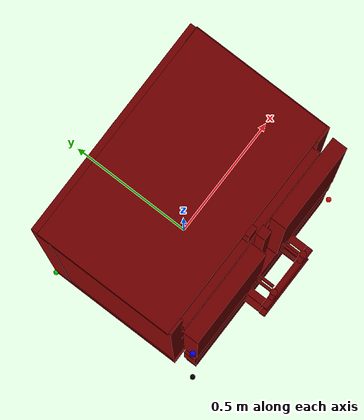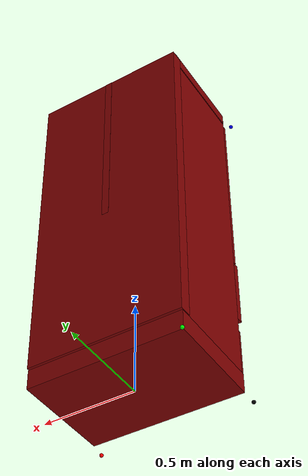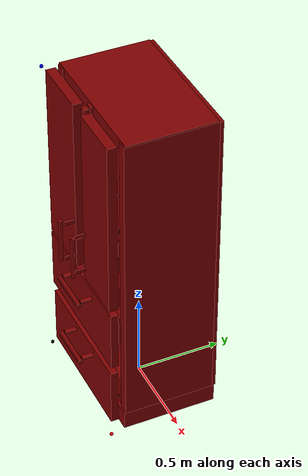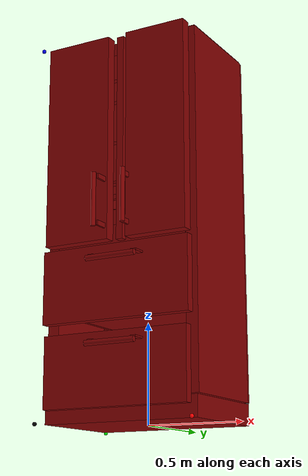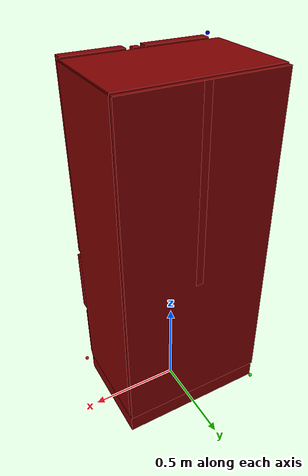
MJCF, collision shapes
<?xml version='1.0' encoding='utf-8'?>
<mujoco model="model">
    <compiler angle="radian" />
    <asset>
        <mesh file="visuals/Refrigerator033_Drawer004.obj" name="drawer004_vis" />
        <mesh file="visuals/Refrigerator033_Drawer002.obj" name="drawer002_vis" />
        <mesh file="visuals/Refrigerator033_Door002.obj" name="door002_vis" />
        <mesh file="visuals/Refrigerator033_Drawer001.obj" name="drawer001_vis" />
        <mesh file="visuals/Refrigerator033_Body001.obj" name="body_vis" />
        <mesh file="visuals/Refrigerator033_Drawer003.obj" name="drawer003_vis" />
        <mesh file="visuals/Refrigerator033_Door001.obj" name="door001_vis" />
        <texture file="visuals/T_Refrigerator033_BC001.png" name="T_BC001" type="2d" />
        <material name="material" rgba="1 1 1 1" texture="T_BC001" />
    </asset>
    <default>
        <default class="visual">
            <geom conaffinity="0" contype="0" group="1" type="mesh" />
        </default>
        <default class="collision">
            <geom group="0" rgba="0.5 0 0 0.5" />
        </default>
    </default>
    <worldbody>
        <body>
            <site rgba="0 0 0 1" size="0.01" pos="-0.415 -0.35881199687719345 0" name="ext_p0" />
            <site rgba="1 0 0 1" size="0.01" pos="0.419 -0.35881199687719345 0" name="ext_px" />
            <site rgba="0 1 0 1" size="0.01" pos="-0.415 0.2811879888176918 0" name="ext_py" />
            <site rgba="0 0 1 1" size="0.01" pos="-0.415 -0.35881199687719345 1.905" name="ext_pz" />

            <body name="object">
                <geom mesh="body_vis" type="mesh" solimp="0.998 0.998 0.001" solref="0.001 1" density="100" friction="0.95 0.3 0.1" class="visual" material="material" />
                <geom class="collision" type="box" pos="-0.004014025442302227 -0.0023836444597691298 0.05418802797794342" size="0.40993714332580566 0.27272266149520874 0.05263949930667877" />
                <geom class="collision" type="box" pos="-0.004014015197753906 0.2450789511203766 1.0038049221038818" size="0.40993714332580566 0.03400681912899017 0.8916877508163452" />
                <geom class="collision" type="box" pos="-0.004014011938124895 -0.002383651677519083 1.6863210201263428" size="0.3539907932281494 0.2809253931045532 0.008237498812377453" />
                <geom class="collision" type="box" pos="-0.004014011938124895 -0.002383651677519083 1.5701274871826172" size="0.3539907932281494 0.2809253931045532 0.008237498812377453" />
                <geom class="collision" type="box" pos="-0.004014011938124895 -0.002383651677519083 1.3576931953430176" size="0.3539907932281494 0.2809253931045532 0.008237498812377453" />
                <geom class="collision" type="box" pos="-0.004014015197753906 0.044155556708574295 1.1783292293548584" size="0.3539907932281494 0.23438617587089539 0.008237498812377453" />
                <geom class="collision" type="box" pos="-0.004014021251350641 -0.002383653772994876 0.8913000822067261" size="0.3539907932281494 0.26747578382492065 0.054415930062532425" />
                <geom class="collision" type="box" pos="-0.38005530834198 -0.005850009620189667 1.0038048028945923" size="0.03057851269841194 0.2626432180404663 0.89168781042099" />
                <geom class="collision" type="box" pos="0.37930935621261597 -0.005850009620189667 1.0038048028945923" size="0.03057851269841194 0.2626432180404663 0.89168781042099" />
                <geom class="collision" type="box" pos="0.0006092504481784999 0.0012152758426964283 1.395264983177185" size="0.02008173055946827 0.278229683637619 0.5002276301383972" />
                <geom class="collision" type="box" pos="-0.0040140096098184586 -0.002383654937148094 1.8697007894515991" size="0.40993714332580566 0.25724858045578003 0.03198777139186859" />
                <body name="door001">
                    <joint axis="0 0 1" pos="0.40 -0.34 1.3389856815338135" limited="true" name="door001_joint" range="0.0 1.5707963267948966" type="hinge" damping="2" frictionloss="2" armature=".01" />
                    <geom mesh="door001_vis" type="mesh" solimp="0.998 0.998 0.001" solref="0.001 1" density="100" friction="0.95 0.3 0.1" class="visual" material="material" />
                    <geom class="collision" type="box" pos="0.2303970903158188 -0.32318952679634094 1.3786604404449463" size="0.1592644464969635 0.028279423713684082 0.5224586129188538" />
                    <geom class="collision" type="box" pos="0.021353142336010933 -0.30471503734588623 1.3786604404449463" size="0.018040252849459648 0.01645059883594513 0.5224586129188538" />
                    <geom class="collision" type="box" pos="0.08708798885345459 -0.3817767798900604 1.1553395986557007" size="0.004676217213273048 0.03463103622198105 0.012289422564208508" />
                    <geom class="collision" type="box" pos="0.08708798885345459 -0.3817767798900604 0.9225906133651733" size="0.004676217213273048 0.03463103622198105 0.012289422564208508" />
                    <geom class="collision" type="cylinder" pos="0.10214217752218246 -0.4281523823738098 1.038395881652832" size="0.011838441714644432 0.13244543969631195" />
                </body>
                <body name="door002">
                    <joint axis="0 0 -1" pos="-0.39 -0.34 1.339033842086792" limited="true" name="door002_joint" range="0.0 1.5707963267948966" type="hinge" damping="2" frictionloss="2" armature=".01" />
                    <geom mesh="door002_vis" type="mesh" solimp="0.998 0.998 0.001" solref="0.001 1" density="100" friction="0.95 0.3 0.1" class="visual" material="material" />
                    <geom class="collision" type="box" pos="-0.20464655756950378 -0.32318949699401855 1.3786603212356567" size="0.1754167240858078 0.028279423713684082 0.5224586129188538" />
                    <geom class="collision" type="box" pos="-0.04418855905532837 -0.3817767798900604 1.1553395986557007" size="0.004676217213273048 0.03463103622198105 0.012289422564208508" />
                    <geom class="collision" type="box" pos="-0.04418855905532837 -0.3817767798900604 0.9225906133651733" size="0.004676217213273048 0.03463103622198105 0.012289422564208508" />
                    <geom class="collision" type="cylinder" pos="-0.058660030364990234 -0.4281523823738098 1.038395881652832" size="0.011838441714644432 0.13244543969631195" />
                </body>
                <body name="drawer001">
                    <joint axis="0 -1 0" pos="0.0062649864703416824 -0.2511378228664398 0.6767223477363586" limited="true" name="drawer001_joint" range="0.0 0.3" type="slide" damping="2" frictionloss="2" armature=".01" />
                    <geom mesh="drawer001_vis" type="mesh" solimp="0.998 0.998 0.001" solref="0.001 1" density="100" friction="0.95 0.3 0.1" class="visual" material="material" />
                    <geom class="collision" type="box" pos="0.004646307323127985 -0.32503199577331543 0.6509298086166382" size="0.3950435221195221 0.02240605093538761 0.18038514256477356" />
                    <geom class="collision" type="box" pos="0.2989449203014374 -0.045869261026382446 0.6188889741897583" size="0.2345568686723709 0.009062725119292736 0.10751214623451233" quat="0.7071067690849304 0.0 0.0 0.7071067690849304" />
                    <geom class="collision" type="box" pos="-0.29561710357666016 -0.05364654213190079 0.6188889741897583" size="0.23352228105068207 0.009062725119292736 0.10751214623451233" quat="0.7071067690849304 0.0 0.0 0.7071067690849304" />
                    <geom class="collision" type="box" pos="0.0125628262758255 -0.031158821657299995 0.5160815715789795" size="0.3094726800918579 0.004579425323754549 0.23413363099098206" quat="0.7071067690849304 0.7071067690849304 0.0 0.0" />
                    <geom class="collision" type="box" pos="0.15249736607074738 -0.3800819218158722 0.7690523862838745" size="0.03383396938443184 0.013696776703000069 0.00421290285885334" quat="0.7071067690849304 0.0 0.0 0.7071067690849304" />
                    <geom class="collision" type="box" pos="-0.08084800839424133 -0.3800819218158722 0.7690523862838745" size="0.03383396938443184 0.013696776703000069 0.00421290285885334" quat="0.7071067690849304 0.0 0.0 0.7071067690849304" />
                    <geom class="collision" type="cylinder" pos="0.035682350397109985 -0.4275500476360321 0.7523823976516724" size="0.01358901895582676 0.1311779022216797" quat="0.7071068286895752 -0.0 0.7071067690849304 0.0" />
                    <geom class="collision" type="box" pos="-0.026713281869888306 0.1410311758518219 0.6188889741897583" size="0.3118259906768799 0.009062724187970161 0.10751214623451233" quat="0.9999999403953552 0.0 0.0 0.0" />
                </body>
                <body name="drawer002">
                    <joint axis="0 -1 0" pos="0.006276579573750496 -0.2511242926120758 0.2664695382118225" limited="true" name="drawer002_joint" range="0.0 0.3" type="slide" damping="2" frictionloss="2" armature=".01" />
                    <geom mesh="drawer002_vis" type="mesh" solimp="0.998 0.998 0.001" solref="0.001 1" density="100" friction="0.95 0.3 0.1" class="visual" material="material" />
                    <geom class="collision" type="box" pos="0.004646307323127985 -0.32503199577331543 0.23922768235206604" size="0.3837757110595703 0.021766962483525276 0.17524002492427826" />
                    <geom class="collision" type="box" pos="0.32452109456062317 -0.045869261026382446 0.20718681812286377" size="0.21581397950649261 0.008338544517755508 0.08904023468494415" quat="0.7071067690849304 0.0 0.0 0.7071067690849304" />
                    <geom class="collision" type="box" pos="-0.3164469599723816 -0.045869261026382446 0.20718681812286377" size="0.218095064163208 0.00846401322633028 0.09038000553846359" quat="0.7071067690849304 0.0 0.0 0.7071067690849304" />
                    <geom class="collision" type="box" pos="0.004637888167053461 -0.031158829107880592 0.1322559118270874" size="0.2991636395454407 0.004322901368141174 0.22101789712905884" quat="0.7071067690849304 0.7071067690849304 0.0 0.0" />
                    <geom class="collision" type="box" pos="0.15249736607074738 -0.3800819218158722 0.36652302742004395" size="0.03383396938443184 0.013696776703000069 0.00421290285885334" quat="0.7071067690849304 0.0 0.0 0.7071067690849304" />
                    <geom class="collision" type="box" pos="-0.08084800839424133 -0.3800819218158722 0.36652302742004395" size="0.03383396938443184 0.013696776703000069 0.00421290285885334" quat="0.7071067690849304 0.0 0.0 0.7071067690849304" />
                    <geom class="collision" type="cylinder" pos="0.035682350397109985 -0.4275500476360321 0.349852979183197" size="0.01358901895582676 0.1311779022216797" quat="0.7071068286895752 -0.0 0.7071067690849304 0.0" />
                    <geom class="collision" type="box" pos="0.004637888167053461 0.18740352988243103 0.2366029918193817" size="0.29515719413757324 0.07938218116760254 0.008045828901231289" quat="0.7071067690849304 0.7071067690849304 0.0 0.0" />
                </body>
                <body name="drawer003">
                    <joint axis="0 -1 0" pos="-0.18710857629776 -0.013032495975494385 1.026155948638916" limited="true" name="drawer003_joint" range="0.0 0.3" type="slide" damping="2" frictionloss="2" armature=".01" />
                    <geom mesh="drawer003_vis" type="mesh" solimp="0.998 0.998 0.001" solref="0.001 1" density="100" friction="0.95 0.3 0.1" class="visual" material="material" />
                    <geom class="collision" type="box" pos="-0.18542471528053284 -0.1928841471672058 0.9951217770576477" size="0.15829350054264069 0.018393244594335556 0.046824581921100616" />
                    <geom class="collision" type="box" pos="-0.18294472992420197 0.12899869680404663 1.0394916534423828" size="0.15202432870864868 0.003487263573333621 0.08920848369598389" />
                    <geom class="collision" type="box" pos="-0.03708885237574577 -0.01774504780769348 1.0394916534423828" size="0.15588100254535675 0.009062725119292736 0.08920847624540329" quat="0.7071067690849304 0.0 0.0 0.7071067690849304" />
                    <geom class="collision" type="box" pos="-0.33783915638923645 -0.017745018005371094 1.0394916534423828" size="0.15588098764419556 0.009062723256647587 0.08920848369598389" quat="0.7071067690849304 0.0 0.0 0.7071067690849304" />
                    <geom class="collision" type="box" pos="-0.18294472992420197 -0.03278682753443718 0.9549879431724548" size="0.15202432870864868 0.004579432774335146 0.16969114542007446" quat="0.7071067690849304 0.7071067690849304 0.0 0.0" />
                    <geom class="collision" type="box" pos="-0.18542470037937164 -0.18249556422233582 1.1152524948120117" size="0.15829351544380188 0.01033714972436428 0.012092240154743195" />
                    <geom class="collision" type="box" pos="-0.18542471528053284 -0.17722032964229584 1.068914771080017" size="0.15829350054264069 0.01033715158700943 0.03989255800843239" quat="0.9453846216201782 -0.3259570002555847 7.237699334429964e-17 6.470012812302817e-25" />
                </body>
                <body name="drawer004">
                    <joint axis="0 -1 0" pos="0.18560642004013062 -0.013032495975494385 1.0261561870574951" limited="true" name="drawer004_joint" range="0.0 0.3" type="slide" damping="2" frictionloss="2" armature=".01" />
                    <geom mesh="drawer004_vis" type="mesh" solimp="0.998 0.998 0.001" solref="0.001 1" density="100" friction="0.95 0.3 0.1" class="visual" material="material" />
                    <geom class="collision" type="box" pos="0.1845928430557251 -0.1928841471672058 0.9951217770576477" size="0.15829350054264069 0.018393244594335556 0.046824581921100616" />
                    <geom class="collision" type="box" pos="0.18707282841205597 0.12899869680404663 1.0394916534423828" size="0.15202432870864868 0.003487263573333621 0.08920848369598389" />
                    <geom class="collision" type="box" pos="0.33292871713638306 -0.01774504780769348 1.0394916534423828" size="0.15588100254535675 0.009062725119292736 0.08920847624540329" quat="0.7071067690849304 0.0 0.0 0.7071067690849304" />
                    <geom class="collision" type="box" pos="0.032178401947021484 -0.017745018005371094 1.0394916534423828" size="0.15588098764419556 0.009062723256647587 0.08920848369598389" quat="0.7071067690849304 0.0 0.0 0.7071067690849304" />
                    <geom class="collision" type="box" pos="0.18707282841205597 -0.03278682753443718 0.9549879431724548" size="0.15202432870864868 0.004579432774335146 0.16969114542007446" quat="0.7071067690849304 0.7071067690849304 0.0 0.0" />
                    <geom class="collision" type="box" pos="0.1845928579568863 -0.18249556422233582 1.1152524948120117" size="0.15829351544380188 0.01033714972436428 0.012092240154743195" />
                    <geom class="collision" type="box" pos="0.1845928430557251 -0.17722032964229584 1.068914771080017" size="0.15829350054264069 0.01033715158700943 0.03989255800843239" quat="0.9453846216201782 -0.3259570002555847 7.237699334429964e-17 6.470012812302817e-25" />
                </body>
            </body>
        </body>
    </worldbody>
</mujoco>
